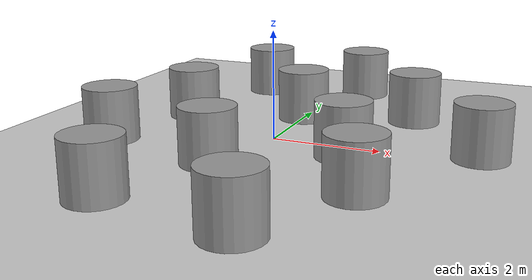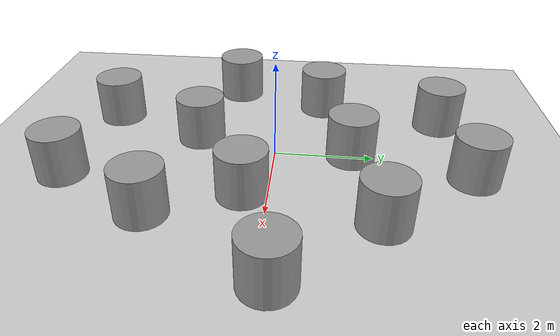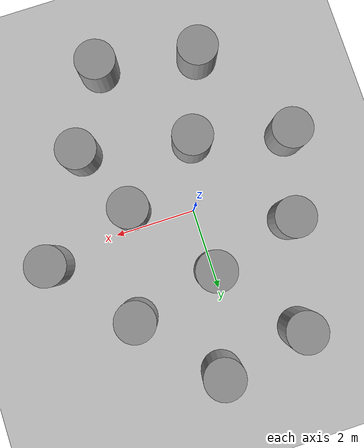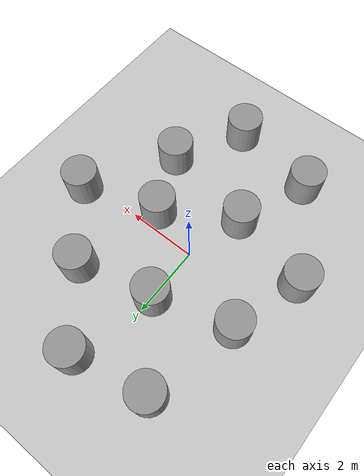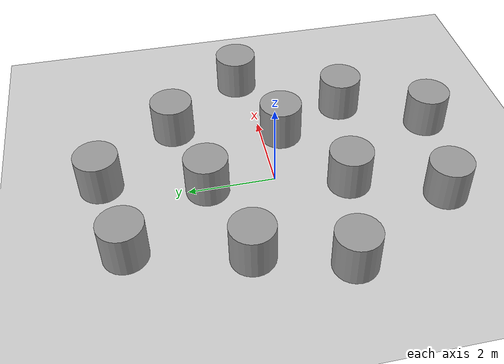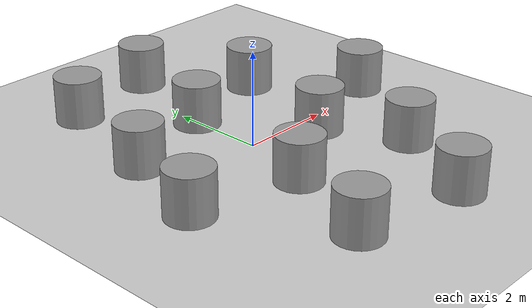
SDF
<sdf version="1.6">
 <world name="default">
  <light name="sun" type="directional">
   <pose>0 0 10 0 -0 0</pose>
   <diffuse>0.8 0.8 0.8 1</diffuse>
   <specular>0.2 0.2 0.2 1</specular>
   <attenuation>
    <range>1000</range>
    <constant>0.9</constant>
    <linear>0.01</linear>
    <quadratic>0.001</quadratic>
   </attenuation>
   <direction>-0.5 0.1 -0.9</direction>
  </light>
  <model name="ground_plane">
   <static>1</static>
   <link name="link">
    <collision name="collision">
     <geometry><plane><normal>0 0 1</normal><size>100 100</size></plane></geometry>
     <surface>
      <contact><collide_bitmask>65535</collide_bitmask></contact>
      <friction><ode><mu>100</mu><mu2>50</mu2></ode></friction>
     </surface>
    </collision>
    <visual name="visual">
     <cast_shadows>0</cast_shadows>
     <geometry><plane><normal>0 0 1</normal><size>100 100</size></plane></geometry>
     <material>
      <script><uri>file://media/materials/scripts/gazebo.material</uri><name>Gazebo/Grey</name></script>
     </material>
    </visual>
   </link>
  </model>
  <gravity>0 0 -9.8</gravity>
  <magnetic_field>6e-06 2.3e-05 -4.2e-05</magnetic_field>
  <atmosphere type="adiabatic"/>
  <physics name="default_physics" default="0" type="ode">
   <max_step_size>0.001</max_step_size>
   <real_time_factor>1</real_time_factor>
   <real_time_update_rate>1000</real_time_update_rate>
  </physics>
  <scene><ambient>0.4 0.4 0.4 1</ambient><background>0.7 0.7 0.7 1</background><shadows>1</shadows></scene>
  <spherical_coordinates>
   <surface_model>EARTH_WGS84</surface_model>
   <latitude_deg>0</latitude_deg>
   <longitude_deg>0</longitude_deg>
   <elevation>0</elevation>
   <heading_deg>0</heading_deg>
  </spherical_coordinates>
  <model name="unit_cylinder">
   <pose>-2.15725 0.933719 0.499998 3e-06 -3e-06 0</pose>
   <link name="link">
    <inertial>
     <mass>1</mass>
     <inertia><ixx>0.145833</ixx><ixy>0</ixy><ixz>0</ixz><iyy>0.145833</iyy><iyz>0</iyz><izz>0.125</izz></inertia>
    </inertial>
    <collision name="collision">
     <geometry><cylinder><radius>0.5</radius><length>1</length></cylinder></geometry>
    </collision>
    <visual name="visual">
     <geometry><cylinder><radius>0.5</radius><length>1</length></cylinder></geometry>
     <material>
      <script><name>Gazebo/Grey</name><uri>file://media/materials/scripts/gazebo.material</uri></script>
     </material>
    </visual>
   </link>
  </model>
  <model name="unit_cylinder_clone">
   <pose>-0.021719 1.55791 0.499998 3e-06 4e-06 -0</pose>
   <link name="link">
    <inertial>
     <mass>1</mass>
     <inertia><ixx>0.145833</ixx><ixy>0</ixy><ixz>0</ixz><iyy>0.145833</iyy><iyz>0</iyz><izz>0.125</izz></inertia>
    </inertial>
    <collision name="collision">
     <geometry><cylinder><radius>0.5</radius><length>1</length></cylinder></geometry>
    </collision>
    <visual name="visual">
     <geometry><cylinder><radius>0.5</radius><length>1</length></cylinder></geometry>
     <material>
      <script><name>Gazebo/Grey</name><uri>file://media/materials/scripts/gazebo.material</uri></script>
     </material>
    </visual>
   </link>
  </model>
  <model name="unit_cylinder_clone_0">
   <pose>-0.484341 -1.63718 0.499998 3e-06 -4e-06 0</pose>
   <link name="link">
    <inertial>
     <mass>1</mass>
     <inertia><ixx>0.145833</ixx><ixy>0</ixy><ixz>0</ixz><iyy>0.145833</iyy><iyz>0</iyz><izz>0.125</izz></inertia>
    </inertial>
    <collision name="collision">
     <geometry><cylinder><radius>0.5</radius><length>1</length></cylinder></geometry>
    </collision>
    <visual name="visual">
     <geometry><cylinder><radius>0.5</radius><length>1</length></cylinder></geometry>
     <material>
      <script><name>Gazebo/Grey</name><uri>file://media/materials/scripts/gazebo.material</uri></script>
     </material>
    </visual>
   </link>
  </model>
  <model name="unit_cylinder_clone_1">
   <pose>1.48023 -0.472884 0.499998 3e-06 -3e-06 0</pose>
   <link name="link">
    <inertial>
     <mass>1</mass>
     <inertia><ixx>0.145833</ixx><ixy>0</ixy><ixz>0</ixz><iyy>0.145833</iyy><iyz>0</iyz><izz>0.125</izz></inertia>
    </inertial>
    <collision name="collision">
     <geometry><cylinder><radius>0.5</radius><length>1</length></cylinder></geometry>
    </collision>
    <visual name="visual">
     <geometry><cylinder><radius>0.5</radius><length>1</length></cylinder></geometry>
     <material>
      <script><name>Gazebo/Grey</name><uri>file://media/materials/scripts/gazebo.material</uri></script>
     </material>
    </visual>
   </link>
  </model>
  <model name="unit_cylinder_clone_2">
   <pose>-2.77446 -1.07811 0.499992 -3e-06 3e-06 0</pose>
   <link name="link">
    <inertial>
     <mass>1</mass>
     <inertia><ixx>0.145833</ixx><ixy>0</ixy><ixz>0</ixz><iyy>0.145833</iyy><iyz>0</iyz><izz>0.125</izz></inertia>
    </inertial>
    <collision name="collision">
     <geometry><cylinder><radius>0.5</radius><length>1</length></cylinder></geometry>
    </collision>
    <visual name="visual">
     <geometry><cylinder><radius>0.5</radius><length>1</length></cylinder></geometry>
     <material>
      <script><name>Gazebo/Grey</name><uri>file://media/materials/scripts/gazebo.material</uri></script>
     </material>
    </visual>
   </link>
  </model>
  <model name="unit_cylinder_clone_3">
   <pose>1.16368 -4.08948 0.499992 -3e-06 3e-06 0</pose>
   <link name="link">
    <inertial>
     <mass>1</mass>
     <inertia><ixx>0.145833</ixx><ixy>0</ixy><ixz>0</ixz><iyy>0.145833</iyy><iyz>0</iyz><izz>0.125</izz></inertia>
    </inertial>
    <collision name="collision">
     <geometry><cylinder><radius>0.5</radius><length>1</length></cylinder></geometry>
    </collision>
    <visual name="visual">
     <geometry><cylinder><radius>0.5</radius><length>1</length></cylinder></geometry>
     <material>
      <script><name>Gazebo/Grey</name><uri>file://media/materials/scripts/gazebo.material</uri></script>
     </material>
    </visual>
   </link>
  </model>
  <model name="unit_cylinder_clone_4">
   <pose>-1.27691 -3.66617 0.499998 3e-06 -4e-06 0</pose>
   <link name="link">
    <inertial>
     <mass>1</mass>
     <inertia><ixx>0.145833</ixx><ixy>0</ixy><ixz>0</ixz><iyy>0.145833</iyy><iyz>0</iyz><izz>0.125</izz></inertia>
    </inertial>
    <collision name="collision">
     <geometry><cylinder><radius>0.5</radius><length>1</length></cylinder></geometry>
    </collision>
    <visual name="visual">
     <geometry><cylinder><radius>0.5</radius><length>1</length></cylinder></geometry>
     <material>
      <script><name>Gazebo/Grey</name><uri>file://media/materials/scripts/gazebo.material</uri></script>
     </material>
    </visual>
   </link>
  </model>
  <model name="unit_cylinder_clone_5">
   <pose>2.22808 -2.16812 0.499998 3e-06 -4e-06 0</pose>
   <link name="link">
    <inertial>
     <mass>1</mass>
     <inertia><ixx>0.145833</ixx><ixy>0</ixy><ixz>0</ixz><iyy>0.145833</iyy><iyz>0</iyz><izz>0.125</izz></inertia>
    </inertial>
    <collision name="collision">
     <geometry><cylinder><radius>0.5</radius><length>1</length></cylinder></geometry>
    </collision>
    <visual name="visual">
     <geometry><cylinder><radius>0.5</radius><length>1</length></cylinder></geometry>
     <material>
      <script><name>Gazebo/Grey</name><uri>file://media/materials/scripts/gazebo.material</uri></script>
     </material>
    </visual>
   </link>
  </model>
  <model name="unit_cylinder_clone_6">
   <pose>2.11181 2.08043 0.499998 3e-06 4e-06 -0</pose>
   <link name="link">
    <inertial>
     <mass>1</mass>
     <inertia><ixx>0.145833</ixx><ixy>0</ixy><ixz>0</ixz><iyy>0.145833</iyy><iyz>0</iyz><izz>0.125</izz></inertia>
    </inertial>
    <collision name="collision">
     <geometry><cylinder><radius>0.5</radius><length>1</length></cylinder></geometry>
    </collision>
    <visual name="visual">
     <geometry><cylinder><radius>0.5</radius><length>1</length></cylinder></geometry>
     <material>
      <script><name>Gazebo/Grey</name><uri>file://media/materials/scripts/gazebo.material</uri></script>
     </material>
    </visual>
   </link>
  </model>
  <model name="unit_cylinder_clone_7">
   <pose>-1.54028 3.502 0.499998 3e-06 4e-06 -0</pose>
   <link name="link">
    <inertial>
     <mass>1</mass>
     <inertia><ixx>0.145833</ixx><ixy>0</ixy><ixz>0</ixz><iyy>0.145833</iyy><iyz>0</iyz><izz>0.125</izz></inertia>
    </inertial>
    <collision name="collision">
     <geometry><cylinder><radius>0.5</radius><length>1</length></cylinder></geometry>
    </collision>
    <visual name="visual">
     <geometry><cylinder><radius>0.5</radius><length>1</length></cylinder></geometry>
     <material>
      <script><name>Gazebo/Grey</name><uri>file://media/materials/scripts/gazebo.material</uri></script>
     </material>
    </visual>
   </link>
  </model>
  <model name="unit_cylinder_clone_8">
   <pose>3.6878 0.231521 0.499998 3e-06 -4e-06 0</pose>
   <link name="link">
    <inertial>
     <mass>1</mass>
     <inertia><ixx>0.145833</ixx><ixy>0</ixy><ixz>0</ixz><iyy>0.145833</iyy><iyz>0</iyz><izz>0.125</izz></inertia>
    </inertial>
    <collision name="collision">
     <geometry><cylinder><radius>0.5</radius><length>1</length></cylinder></geometry>
    </collision>
    <visual name="visual">
     <geometry><cylinder><radius>0.5</radius><length>1</length></cylinder></geometry>
     <material>
      <script><name>Gazebo/Grey</name><uri>file://media/materials/scripts/gazebo.material</uri></script>
     </material>
    </visual>
   </link>
  </model>
  <model name="unit_cylinder_clone_9">
   <pose>0.565867 3.91052 0.499998 3e-06 -4e-06 0</pose>
   <link name="link">
    <inertial>
     <mass>1</mass>
     <inertia><ixx>0.145833</ixx><ixy>0</ixy><ixz>0</ixz><iyy>0.145833</iyy><iyz>0</iyz><izz>0.125</izz></inertia>
    </inertial>
    <collision name="collision">
     <geometry><cylinder><radius>0.5</radius><length>1</length></cylinder></geometry>
    </collision>
    <visual name="visual">
     <geometry><cylinder><radius>0.5</radius><length>1</length></cylinder></geometry>
     <material>
      <script><name>Gazebo/Grey</name><uri>file://media/materials/scripts/gazebo.material</uri></script>
     </material>
    </visual>
   </link>
  </model>
 </world>
</sdf>
